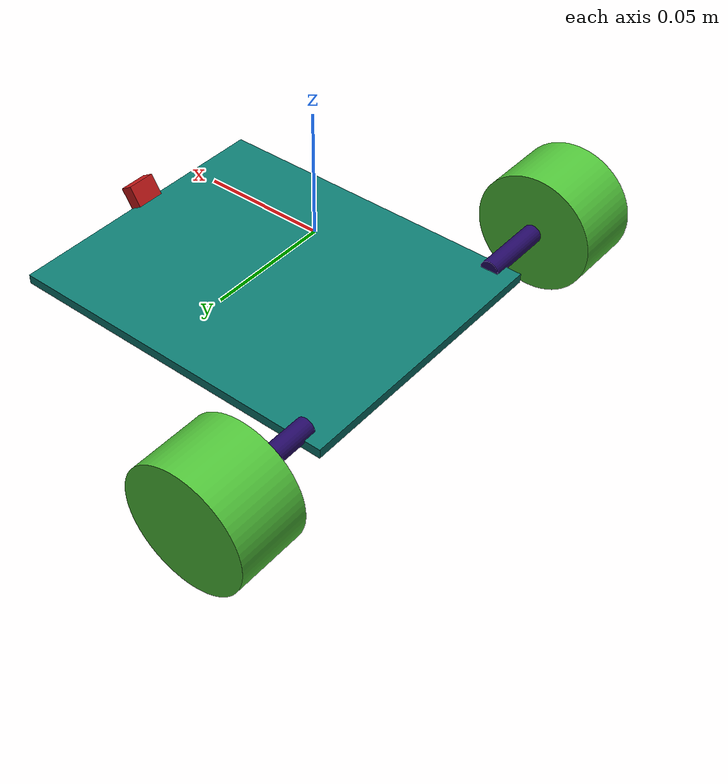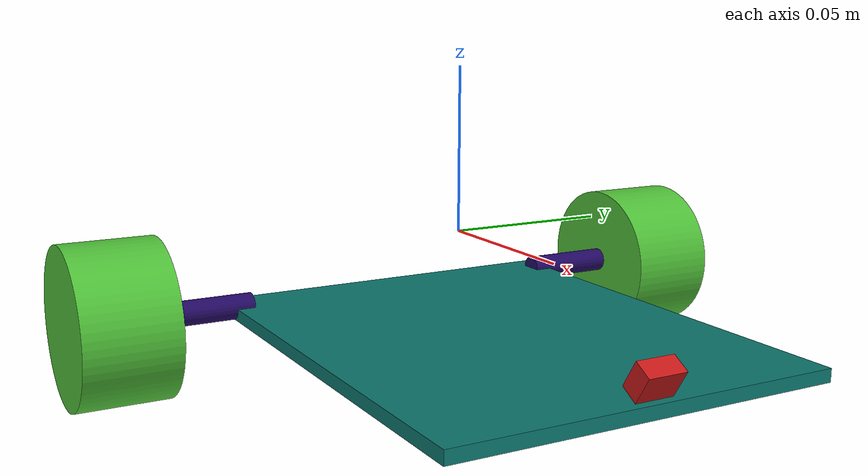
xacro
<?xml version="1.0" ?>
<!-- Generated using onshape-to-robot -->
<!-- Onshape https://cad.onshape.com/documents/dbc31585e048a810d4607e82/w/ba39b9f93a764fe86dcb2c60/e/6d6f58baa376b2fbae51b43c -->
<robot name="line_follower">
  <!-- Link flat_chasis -->
  <link name="flat_chasis">
    <inertial>
      <origin xyz="-0.02 0.00176509 -0.0277359" rpy="0 0 0"/>
      <mass value="0.181593"/>
      <inertia ixx="0.000325771" ixy="-8.0742e-07" ixz="-5.59453e-07" iyy="0.000334742" iyz="1.95819e-07" izz="0.000656154"/>
    </inertial>
    <!-- Part caster_wheel -->
    <visual>
      <origin xyz="0.0263173 0.00510557 -0.043367" rpy="0 -0 -1.5708"/>
      <geometry>
        <mesh filename="package://linebot_description/meshes/caster_wheel.stl"/>
      </geometry>
      <material name="caster_wheel_material">
        <color rgba="0.835294 0.552941 0.933333 1"/>
      </material>
    </visual>
    <collision>
      <origin xyz="0.0263173 0.00510557 -0.043367" rpy="0 -0 -1.5708"/>
      <geometry>
        <mesh filename="package://linebot_description/meshes/caster_wheel.stl"/>
      </geometry>
    </collision>
    <!-- Part flat_chasis -->
    <visual>
      <origin xyz="-0.00168274 -0.00132674 -0.031367" rpy="0 -0 0"/>
      <geometry>
        <mesh filename="package://linebot_description/meshes/flat_chasis.stl"/>
      </geometry>
      <material name="flat_chasis_material">
        <color rgba="0.0470588 0.470588 0.435294 1"/>
      </material>
    </visual>
    <collision>
      <origin xyz="-0.00168274 -0.00132674 -0.031367" rpy="0 -0 0"/>
      <geometry>
        <mesh filename="package://linebot_description/meshes/flat_chasis.stl"/>
      </geometry>
    </collision>
  </link>
  <!-- Link left_axle -->
  <link name="left_axle">
    <inertial>
      <origin xyz="0 -0 -0.0375239" rpy="0 0 0"/>
      <mass value="0.02838"/>
      <inertia ixx="1.72354e-05" ixy="0" ixz="0" iyy="1.72354e-05" iyz="-0" izz="8.55674e-06"/>
    </inertial>
    <!-- Part left_axle -->
    <visual>
      <origin xyz="0 0 -0.045" rpy="1.5708 -0 0"/>
      <geometry>
        <mesh filename="package://linebot_description/meshes/left_axle.stl"/>
      </geometry>
      <material name="left_axle_material">
        <color rgba="0.141176 0.0352941 0.396078 1"/>
      </material>
    </visual>
    <collision>
      <origin xyz="0 0 -0.045" rpy="1.5708 -0 0"/>
      <geometry>
        <mesh filename="package://linebot_description/meshes/left_axle.stl"/>
      </geometry>
    </collision>
    <!-- Part left_wheel -->
    <visual>
      <origin xyz="0 0 -0.045" rpy="1.5708 0 0"/>
      <geometry>
        <mesh filename="package://linebot_description/meshes/left_wheel.stl"/>
      </geometry>
      <material name="left_wheel_material">
        <color rgba="0.313725 0.760784 0.223529 1"/>
      </material>
    </visual>
    <collision><origin xyz="0 0 -0.045" rpy="0 0 0"/><geometry><cylinder radius="0.0255" length="0.03"/></geometry></collision>
  </link>
  <!-- Joint from flat_chasis to left_axle -->
  <joint name="left_wheel" type="continuous">
    <origin xyz="-0.0442753 -0.0510767 -0.027367" rpy="-1.5708 -0 0"/>
    <parent link="flat_chasis"/>
    <child link="left_axle"/>
    <axis xyz="0 0 1"/>
    <limit effort="10" velocity="10"/>
  </joint>
  <!-- Link right_axle -->
  <link name="right_axle">
    <inertial>
      <origin xyz="-0 -0 0.038315" rpy="0 0 0"/>
      <mass value="0.0317382"/>
      <inertia ixx="1.82034e-05" ixy="-0" ixz="0" iyy="1.82034e-05" iyz="0" izz="9.65345e-06"/>
    </inertial>
    <!-- Part right_wheel -->
    <visual>
      <origin xyz="0 0 0.045" rpy="1.5708 -0 0"/>
      <geometry>
        <mesh filename="package://linebot_description/meshes/right_wheel.stl"/>
      </geometry>
      <material name="right_wheel_material">
        <color rgba="0.313725 0.760784 0.223529 1"/>
      </material>
    </visual>
    <collision><origin xyz="0 0 0.045" rpy="0 0 0"/><geometry><cylinder radius="0.0255" length="0.03"/></geometry></collision>
    <!-- Part right_axle -->
    <visual>
      <origin xyz="0 0 0.045" rpy="1.5708 -0 0"/>
      <geometry>
        <mesh filename="package://linebot_description/meshes/right_axle.stl"/>
      </geometry>
      <material name="right_axle_material">
        <color rgba="0.141176 0.0352941 0.396078 1"/>
      </material>
    </visual>
    <collision>
      <origin xyz="0 0 0.045" rpy="1.5708 -0 0"/>
      <geometry>
        <mesh filename="package://linebot_description/meshes/right_axle.stl"/>
      </geometry>
    </collision>
  </link>
  <!-- Joint from flat_chasis to right_axle -->
  <joint name="right_wheel" type="continuous">
    <origin xyz="-0.0442753 0.0574233 -0.027367" rpy="-1.5708 -0 0"/>
    <parent link="flat_chasis"/>
    <child link="right_axle"/>
    <axis xyz="0 0 1"/>
    <limit effort="10" velocity="10"/>
  </joint>
  <!-- Additional plugins.xml -->
  <link name="camera_link">
    <visual>
      <geometry>
        <box size="0.006 0.012 0.009"/>
      </geometry>
      <material name="cam_red">
        <color rgba="0.8 0.1 0.1 1"/>
      </material>
    </visual>
    <inertial>
      <mass value="0.005"/>
      <inertia ixx="1e-6" ixy="0" ixz="0" iyy="1e-6" iyz="0" izz="1e-6"/>
    </inertial>
  </link>
  <joint name="camera_joint" type="fixed">
    <parent link="flat_chasis"/>
    <child link="camera_link"/>
    <origin xyz="0.089 0.003 -0.021" rpy="0 0.55 0"/>
  </joint>
  <gazebo reference="left_axle">
    <mu1>1.0</mu1>
    <mu2>1.0</mu2>
  </gazebo>
  <gazebo reference="right_axle">
    <mu1>1.0</mu1>
    <mu2>1.0</mu2>
  </gazebo>
  <gazebo reference="flat_chasis">
    <mu1>0.0</mu1>
    <mu2>0.0</mu2>
  </gazebo>
   <gazebo reference="camera_link">
    <sensor name="line_camera" type="camera">
      <gz_frame_id>camera_link</gz_frame_id>
      <always_on>true</always_on>
      <update_rate>30</update_rate>
      <visualize>false</visualize>
      <topic>camera/image_raw</topic>
      <camera>
        <horizontal_fov>1.3</horizontal_fov>
        <image>
          <width>320</width>
          <height>240</height>
          <format>R8G8B8</format>
        </image>
        <clip>
          <near>0.01</near>
          <far>5.0</far>
        </clip>
      </camera>
    </sensor>
  </gazebo>
  <gazebo>
    <plugin filename="gz-sim-diff-drive-system" name="gz::sim::systems::DiffDrive">
      <left_joint>right_wheel</left_joint>
      <right_joint>left_wheel</right_joint>
      <wheel_separation>0.1985</wheel_separation>
      <wheel_radius>0.0255</wheel_radius>
      <odom_publish_frequency>30</odom_publish_frequency>
      <topic>cmd_vel</topic>
      <odom_topic>odom</odom_topic>
      <tf_topic>tf</tf_topic>
      <frame_id>odom</frame_id>
      <child_frame_id>flat_chasis</child_frame_id>
      <max_linear_velocity>1.0</max_linear_velocity>
      <min_linear_velocity>-1.0</min_linear_velocity>
      <max_angular_velocity>4.0</max_angular_velocity>
      <min_angular_velocity>-4.0</min_angular_velocity>
    </plugin>
    <plugin filename="gz-sim-joint-state-publisher-system" name="gz::sim::systems::JointStatePublisher">
      <topic>joint_states</topic>
    </plugin>
  </gazebo>
</robot>
